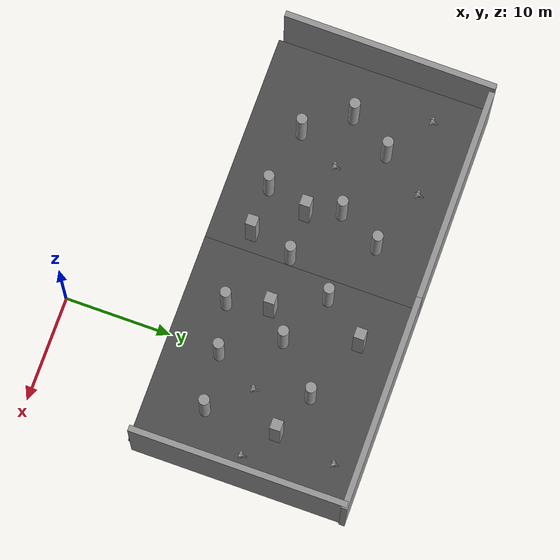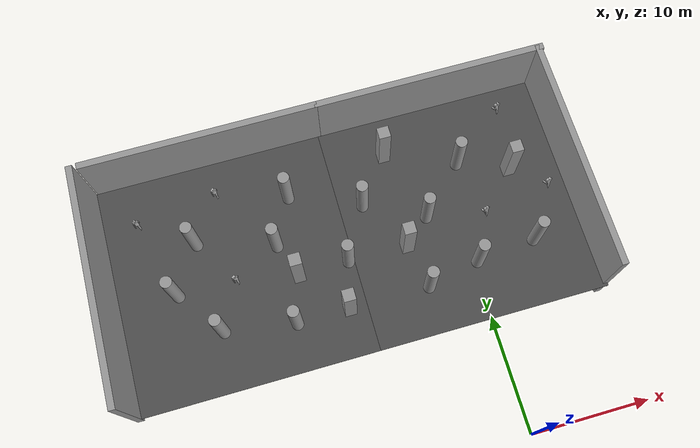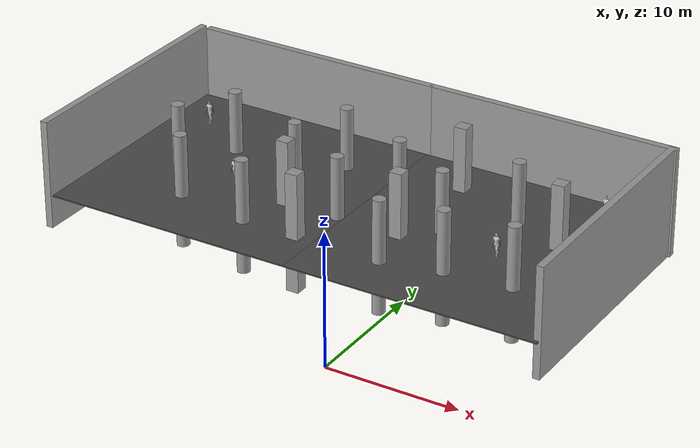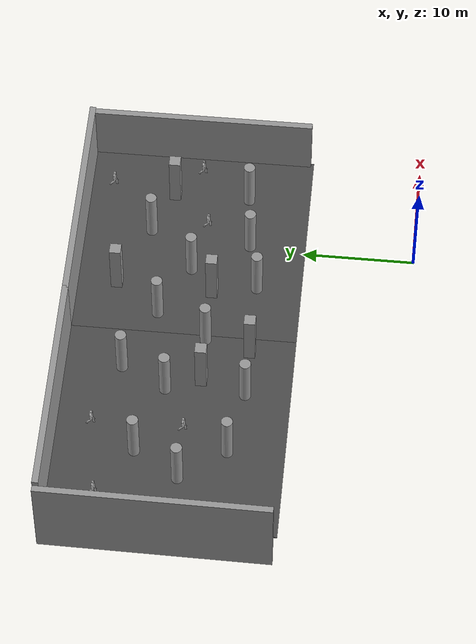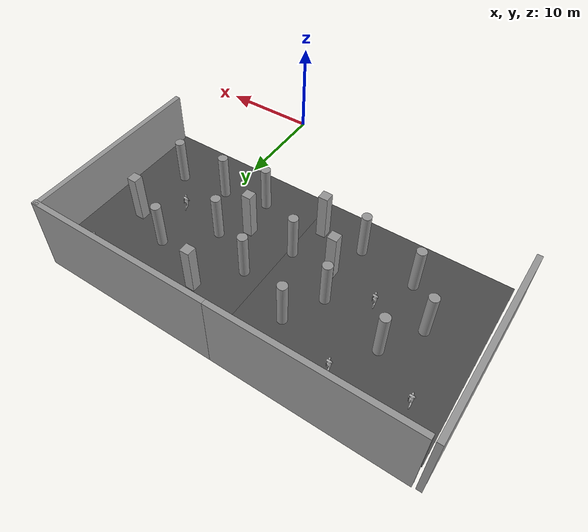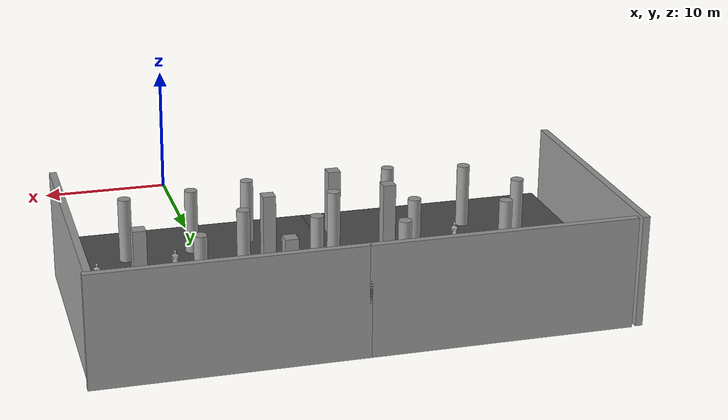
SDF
<sdf version="1.6">
 <model name="MW_world_1_0">
  <link name="link_0_0">
   <pose>-21.6457 14.7871 0.5 0 -0 0</pose>
   <inertial>
    <mass>9.05819</mass>
    <inertia><ixx>62.5018</ixx><ixy>0</ixy><ixz>0</ixz><iyy>62.5018</iyy><iyz>0</iyz><izz>1.13227</izz></inertia>
   </inertial>
   <visual name="visual">
    <geometry><cylinder><radius>0.5</radius><length>9.05819</length></cylinder></geometry>
    <material>
     <lighting>1</lighting>
     <script><uri>file://media/materials/scripts/gazebo.material</uri><name>Gazebo/Grey</name></script>
     <ambient>0.3 0.3 0.3 1</ambient>
     <diffuse>0.7 0.7 0.7 1</diffuse>
     <specular>0.01 0.01 0.01 1</specular>
     <emissive>0 0 0 1</emissive>
    </material>
   </visual>
   <collision name="collision">
    <geometry><cylinder><radius>0.5</radius><length>9.05819</length></cylinder></geometry>
    <surface>
     <friction>
      <ode><mu>1</mu><mu2>1</mu2><fdir1>0 0 0</fdir1><slip1>0</slip1><slip2>0</slip2></ode>
      <torsional>
       <coefficient>1</coefficient>
       <patch_radius>0</patch_radius>
       <surface_radius>0</surface_radius>
       <use_patch_radius>1</use_patch_radius>
       <ode><slip>0</slip></ode>
      </torsional>
     </friction>
     <bounce><restitution_coefficient>0</restitution_coefficient><threshold>1e+06</threshold></bounce>
     <contact>
      <collide_without_contact>0</collide_without_contact>
      <collide_without_contact_bitmask>1</collide_without_contact_bitmask>
      <collide_bitmask>1</collide_bitmask>
      <ode>
       <soft_cfm>0</soft_cfm>
       <soft_erp>0.2</soft_erp>
       <kp>1e+13</kp>
       <kd>1</kd>
       <max_vel>0.01</max_vel>
       <min_depth>0</min_depth>
      </ode>
      <bullet>
       <split_impulse>1</split_impulse>
       <split_impulse_penetration_threshold>-0.01</split_impulse_penetration_threshold>
       <soft_cfm>0</soft_cfm>
       <soft_erp>0.2</soft_erp>
       <kp>1e+13</kp>
       <kd>1</kd>
      </bullet>
     </contact>
    </surface>
   </collision>
  </link>
  <link name="link_0_0_clone">
   <pose>-13.6457 24.7871 0.5 0 -0 0</pose>
   <inertial>
    <mass>9.05819</mass>
    <inertia><ixx>62.5018</ixx><ixy>0</ixy><ixz>0</ixz><iyy>62.5018</iyy><iyz>0</iyz><izz>1.13227</izz></inertia>
   </inertial>
   <visual name="visual_0">
    <geometry><cylinder><radius>0.5</radius><length>9.05819</length></cylinder></geometry>
    <material>
     <lighting>1</lighting>
     <script><uri>file://media/materials/scripts/gazebo.material</uri><name>Gazebo/Grey</name></script>
     <ambient>0.3 0.3 0.3 1</ambient>
     <diffuse>0.7 0.7 0.7 1</diffuse>
     <specular>0.01 0.01 0.01 1</specular>
     <emissive>0 0 0 1</emissive>
     <shader type="pixel"/>
    </material>
   </visual>
   <collision name="collision">
    <geometry><cylinder><radius>0.5</radius><length>9.05819</length></cylinder></geometry>
    <surface>
     <friction>
      <ode><mu>1</mu><mu2>1</mu2><fdir1>0 0 0</fdir1><slip1>0</slip1><slip2>0</slip2></ode>
      <torsional>
       <coefficient>1</coefficient>
       <patch_radius>0</patch_radius>
       <surface_radius>0</surface_radius>
       <use_patch_radius>1</use_patch_radius>
       <ode><slip>0</slip></ode>
      </torsional>
     </friction>
     <bounce><restitution_coefficient>0</restitution_coefficient><threshold>1e+06</threshold></bounce>
     <contact>
      <collide_without_contact>0</collide_without_contact>
      <collide_without_contact_bitmask>1</collide_without_contact_bitmask>
      <collide_bitmask>1</collide_bitmask>
      <ode>
       <soft_cfm>0</soft_cfm>
       <soft_erp>0.2</soft_erp>
       <kp>1e+13</kp>
       <kd>1</kd>
       <max_vel>0.01</max_vel>
       <min_depth>0</min_depth>
      </ode>
      <bullet>
       <split_impulse>1</split_impulse>
       <split_impulse_penetration_threshold>-0.01</split_impulse_penetration_threshold>
       <soft_cfm>0</soft_cfm>
       <soft_erp>0.2</soft_erp>
       <kp>1e+13</kp>
       <kd>1</kd>
      </bullet>
     </contact>
    </surface>
   </collision>
  </link>
  <link name="link_0_0_clone_0">
   <pose>0.35425 14.7871 0.5 0 -0 0</pose>
   <inertial>
    <mass>9.05819</mass>
    <inertia><ixx>62.5018</ixx><ixy>0</ixy><ixz>0</ixz><iyy>62.5018</iyy><iyz>0</iyz><izz>1.13227</izz></inertia>
   </inertial>
   <visual name="visual_0">
    <geometry><cylinder><radius>0.5</radius><length>9.05819</length></cylinder></geometry>
    <material>
     <lighting>1</lighting>
     <script><uri>file://media/materials/scripts/gazebo.material</uri><name>Gazebo/Grey</name></script>
     <ambient>0.3 0.3 0.3 1</ambient>
     <diffuse>0.7 0.7 0.7 1</diffuse>
     <specular>0.01 0.01 0.01 1</specular>
     <emissive>0 0 0 1</emissive>
     <shader type="pixel"/>
    </material>
   </visual>
   <collision name="collision">
    <geometry><cylinder><radius>0.5</radius><length>9.05819</length></cylinder></geometry>
    <surface>
     <friction>
      <ode><mu>1</mu><mu2>1</mu2><fdir1>0 0 0</fdir1><slip1>0</slip1><slip2>0</slip2></ode>
      <torsional>
       <coefficient>1</coefficient>
       <patch_radius>0</patch_radius>
       <surface_radius>0</surface_radius>
       <use_patch_radius>1</use_patch_radius>
       <ode><slip>0</slip></ode>
      </torsional>
     </friction>
     <bounce><restitution_coefficient>0</restitution_coefficient><threshold>1e+06</threshold></bounce>
     <contact>
      <collide_without_contact>0</collide_without_contact>
      <collide_without_contact_bitmask>1</collide_without_contact_bitmask>
      <collide_bitmask>1</collide_bitmask>
      <ode>
       <soft_cfm>0</soft_cfm>
       <soft_erp>0.2</soft_erp>
       <kp>1e+13</kp>
       <kd>1</kd>
       <max_vel>0.01</max_vel>
       <min_depth>0</min_depth>
      </ode>
      <bullet>
       <split_impulse>1</split_impulse>
       <split_impulse_penetration_threshold>-0.01</split_impulse_penetration_threshold>
       <soft_cfm>0</soft_cfm>
       <soft_erp>0.2</soft_erp>
       <kp>1e+13</kp>
       <kd>1</kd>
      </bullet>
     </contact>
    </surface>
   </collision>
  </link>
  <link name="link_0_0_clone_1">
   <pose>1.35425 23.7871 0.5 0 -0 0</pose>
   <inertial>
    <mass>9.05819</mass>
    <inertia><ixx>62.5018</ixx><ixy>0</ixy><ixz>0</ixz><iyy>62.5018</iyy><iyz>0</iyz><izz>1.13227</izz></inertia>
   </inertial>
   <visual name="visual_0">
    <geometry><cylinder><radius>0.5</radius><length>9.05819</length></cylinder></geometry>
    <material>
     <lighting>1</lighting>
     <script><uri>file://media/materials/scripts/gazebo.material</uri><name>Gazebo/Grey</name></script>
     <ambient>0.3 0.3 0.3 1</ambient>
     <diffuse>0.7 0.7 0.7 1</diffuse>
     <specular>0.01 0.01 0.01 1</specular>
     <emissive>0 0 0 1</emissive>
     <shader type="pixel"/>
    </material>
   </visual>
   <collision name="collision">
    <geometry><cylinder><radius>0.5</radius><length>9.05819</length></cylinder></geometry>
    <surface>
     <friction>
      <ode><mu>1</mu><mu2>1</mu2><fdir1>0 0 0</fdir1><slip1>0</slip1><slip2>0</slip2></ode>
      <torsional>
       <coefficient>1</coefficient>
       <patch_radius>0</patch_radius>
       <surface_radius>0</surface_radius>
       <use_patch_radius>1</use_patch_radius>
       <ode><slip>0</slip></ode>
      </torsional>
     </friction>
     <bounce><restitution_coefficient>0</restitution_coefficient><threshold>1e+06</threshold></bounce>
     <contact>
      <collide_without_contact>0</collide_without_contact>
      <collide_without_contact_bitmask>1</collide_without_contact_bitmask>
      <collide_bitmask>1</collide_bitmask>
      <ode>
       <soft_cfm>0</soft_cfm>
       <soft_erp>0.2</soft_erp>
       <kp>1e+13</kp>
       <kd>1</kd>
       <max_vel>0.01</max_vel>
       <min_depth>0</min_depth>
      </ode>
      <bullet>
       <split_impulse>1</split_impulse>
       <split_impulse_penetration_threshold>-0.01</split_impulse_penetration_threshold>
       <soft_cfm>0</soft_cfm>
       <soft_erp>0.2</soft_erp>
       <kp>1e+13</kp>
       <kd>1</kd>
      </bullet>
     </contact>
    </surface>
   </collision>
  </link>
  <link name="link_0_0_clone_10">
   <pose>5.5552 15.3295 0.5 0 -0 0</pose>
   <inertial>
    <mass>9.05819</mass>
    <inertia><ixx>62.5018</ixx><ixy>0</ixy><ixz>0</ixz><iyy>62.5018</iyy><iyz>0</iyz><izz>1.13227</izz></inertia>
   </inertial>
   <visual name="visual_0">
    <geometry><cylinder><radius>0.5</radius><length>9.05819</length></cylinder></geometry>
    <material>
     <lighting>1</lighting>
     <script><uri>file://media/materials/scripts/gazebo.material</uri><name>Gazebo/Grey</name></script>
     <ambient>0.3 0.3 0.3 1</ambient>
     <diffuse>0.7 0.7 0.7 1</diffuse>
     <specular>0.01 0.01 0.01 1</specular>
     <emissive>0 0 0 1</emissive>
     <shader type="pixel"/>
    </material>
   </visual>
   <collision name="collision">
    <geometry><cylinder><radius>0.5</radius><length>9.05819</length></cylinder></geometry>
    <surface>
     <friction>
      <ode><mu>1</mu><mu2>1</mu2><fdir1>0 0 0</fdir1><slip1>0</slip1><slip2>0</slip2></ode>
      <torsional>
       <coefficient>1</coefficient>
       <patch_radius>0</patch_radius>
       <surface_radius>0</surface_radius>
       <use_patch_radius>1</use_patch_radius>
       <ode><slip>0</slip></ode>
      </torsional>
     </friction>
     <bounce><restitution_coefficient>0</restitution_coefficient><threshold>1e+06</threshold></bounce>
     <contact>
      <collide_without_contact>0</collide_without_contact>
      <collide_without_contact_bitmask>1</collide_without_contact_bitmask>
      <collide_bitmask>1</collide_bitmask>
      <ode>
       <soft_cfm>0</soft_cfm>
       <soft_erp>0.2</soft_erp>
       <kp>1e+13</kp>
       <kd>1</kd>
       <max_vel>0.01</max_vel>
       <min_depth>0</min_depth>
      </ode>
      <bullet>
       <split_impulse>1</split_impulse>
       <split_impulse_penetration_threshold>-0.01</split_impulse_penetration_threshold>
       <soft_cfm>0</soft_cfm>
       <soft_erp>0.2</soft_erp>
       <kp>1e+13</kp>
       <kd>1</kd>
      </bullet>
     </contact>
    </surface>
   </collision>
  </link>
  <link name="link_0_0_clone_2">
   <pose>-10.147 17.7871 0.5 0 -0 0</pose>
   <inertial>
    <mass>9.05819</mass>
    <inertia><ixx>62.5018</ixx><ixy>0</ixy><ixz>0</ixz><iyy>62.5018</iyy><iyz>0</iyz><izz>1.13227</izz></inertia>
   </inertial>
   <visual name="visual_0">
    <geometry><cylinder><radius>0.5</radius><length>9.05819</length></cylinder></geometry>
    <material>
     <lighting>1</lighting>
     <script><uri>file://media/materials/scripts/gazebo.material</uri><name>Gazebo/Grey</name></script>
     <ambient>0.3 0.3 0.3 1</ambient>
     <diffuse>0.7 0.7 0.7 1</diffuse>
     <specular>0.01 0.01 0.01 1</specular>
     <emissive>0 0 0 1</emissive>
     <shader type="pixel"/>
    </material>
   </visual>
   <collision name="collision">
    <geometry><cylinder><radius>0.5</radius><length>9.05819</length></cylinder></geometry>
    <surface>
     <friction>
      <ode><mu>1</mu><mu2>1</mu2><fdir1>0 0 0</fdir1><slip1>0</slip1><slip2>0</slip2></ode>
      <torsional>
       <coefficient>1</coefficient>
       <patch_radius>0</patch_radius>
       <surface_radius>0</surface_radius>
       <use_patch_radius>1</use_patch_radius>
       <ode><slip>0</slip></ode>
      </torsional>
     </friction>
     <bounce><restitution_coefficient>0</restitution_coefficient><threshold>1e+06</threshold></bounce>
     <contact>
      <collide_without_contact>0</collide_without_contact>
      <collide_without_contact_bitmask>1</collide_without_contact_bitmask>
      <collide_bitmask>1</collide_bitmask>
      <ode>
       <soft_cfm>0</soft_cfm>
       <soft_erp>0.2</soft_erp>
       <kp>1e+13</kp>
       <kd>1</kd>
       <max_vel>0.01</max_vel>
       <min_depth>0</min_depth>
      </ode>
      <bullet>
       <split_impulse>1</split_impulse>
       <split_impulse_penetration_threshold>-0.01</split_impulse_penetration_threshold>
       <soft_cfm>0</soft_cfm>
       <soft_erp>0.2</soft_erp>
       <kp>1e+13</kp>
       <kd>1</kd>
      </bullet>
     </contact>
    </surface>
   </collision>
  </link>
  <link name="link_0_0_clone_3">
   <pose>-7.64575 22.3014 0.5 0 -0 0</pose>
   <inertial>
    <mass>9.05819</mass>
    <inertia><ixx>62.5018</ixx><ixy>0</ixy><ixz>0</ixz><iyy>62.5018</iyy><iyz>0</iyz><izz>1.13227</izz></inertia>
   </inertial>
   <visual name="visual_0">
    <geometry><cylinder><radius>0.5</radius><length>9.05819</length></cylinder></geometry>
    <material>
     <lighting>1</lighting>
     <script><uri>file://media/materials/scripts/gazebo.material</uri><name>Gazebo/Grey</name></script>
     <ambient>0.3 0.3 0.3 1</ambient>
     <diffuse>0.7 0.7 0.7 1</diffuse>
     <specular>0.01 0.01 0.01 1</specular>
     <emissive>0 0 0 1</emissive>
     <shader type="pixel"/>
    </material>
   </visual>
   <collision name="collision">
    <geometry><cylinder><radius>0.5</radius><length>9.05819</length></cylinder></geometry>
    <surface>
     <friction>
      <ode><mu>1</mu><mu2>1</mu2><fdir1>0 0 0</fdir1><slip1>0</slip1><slip2>0</slip2></ode>
      <torsional>
       <coefficient>1</coefficient>
       <patch_radius>0</patch_radius>
       <surface_radius>0</surface_radius>
       <use_patch_radius>1</use_patch_radius>
       <ode><slip>0</slip></ode>
      </torsional>
     </friction>
     <bounce><restitution_coefficient>0</restitution_coefficient><threshold>1e+06</threshold></bounce>
     <contact>
      <collide_without_contact>0</collide_without_contact>
      <collide_without_contact_bitmask>1</collide_without_contact_bitmask>
      <collide_bitmask>1</collide_bitmask>
      <ode>
       <soft_cfm>0</soft_cfm>
       <soft_erp>0.2</soft_erp>
       <kp>1e+13</kp>
       <kd>1</kd>
       <max_vel>0.01</max_vel>
       <min_depth>0</min_depth>
      </ode>
      <bullet>
       <split_impulse>1</split_impulse>
       <split_impulse_penetration_threshold>-0.01</split_impulse_penetration_threshold>
       <soft_cfm>0</soft_cfm>
       <soft_erp>0.2</soft_erp>
       <kp>1e+13</kp>
       <kd>1</kd>
      </bullet>
     </contact>
    </surface>
   </collision>
  </link>
  <link name="link_0_0_clone_4">
   <pose>-15.6457 20.7871 0.5 0 -0 0</pose>
   <inertial>
    <mass>9.05819</mass>
    <inertia><ixx>62.5018</ixx><ixy>0</ixy><ixz>0</ixz><iyy>62.5018</iyy><iyz>0</iyz><izz>1.13227</izz></inertia>
   </inertial>
   <visual name="visual_0">
    <geometry><cylinder><radius>0.5</radius><length>9.05819</length></cylinder></geometry>
    <material>
     <lighting>1</lighting>
     <script><uri>file://media/materials/scripts/gazebo.material</uri><name>Gazebo/Grey</name></script>
     <ambient>0.3 0.3 0.3 1</ambient>
     <diffuse>0.7 0.7 0.7 1</diffuse>
     <specular>0.01 0.01 0.01 1</specular>
     <emissive>0 0 0 1</emissive>
     <shader type="pixel"/>
    </material>
   </visual>
   <collision name="collision">
    <geometry><cylinder><radius>0.5</radius><length>9.05819</length></cylinder></geometry>
    <surface>
     <friction>
      <ode><mu>1</mu><mu2>1</mu2><fdir1>0 0 0</fdir1><slip1>0</slip1><slip2>0</slip2></ode>
      <torsional>
       <coefficient>1</coefficient>
       <patch_radius>0</patch_radius>
       <surface_radius>0</surface_radius>
       <use_patch_radius>1</use_patch_radius>
       <ode><slip>0</slip></ode>
      </torsional>
     </friction>
     <bounce><restitution_coefficient>0</restitution_coefficient><threshold>1e+06</threshold></bounce>
     <contact>
      <collide_without_contact>0</collide_without_contact>
      <collide_without_contact_bitmask>1</collide_without_contact_bitmask>
      <collide_bitmask>1</collide_bitmask>
      <ode>
       <soft_cfm>0</soft_cfm>
       <soft_erp>0.2</soft_erp>
       <kp>1e+13</kp>
       <kd>1</kd>
       <max_vel>0.01</max_vel>
       <min_depth>0</min_depth>
      </ode>
      <bullet>
       <split_impulse>1</split_impulse>
       <split_impulse_penetration_threshold>-0.01</split_impulse_penetration_threshold>
       <soft_cfm>0</soft_cfm>
       <soft_erp>0.2</soft_erp>
       <kp>1e+13</kp>
       <kd>1</kd>
      </bullet>
     </contact>
    </surface>
   </collision>
  </link>
  <link name="link_0_0_clone_5">
   <pose>-15.6457 13.7871 0.5 0 -0 0</pose>
   <inertial>
    <mass>9.05819</mass>
    <inertia><ixx>62.5018</ixx><ixy>0</ixy><ixz>0</ixz><iyy>62.5018</iyy><iyz>0</iyz><izz>1.13227</izz></inertia>
   </inertial>
   <visual name="visual_0">
    <geometry><cylinder><radius>0.5</radius><length>9.05819</length></cylinder></geometry>
    <material>
     <lighting>1</lighting>
     <script><uri>file://media/materials/scripts/gazebo.material</uri><name>Gazebo/Grey</name></script>
     <ambient>0.3 0.3 0.3 1</ambient>
     <diffuse>0.7 0.7 0.7 1</diffuse>
     <specular>0.01 0.01 0.01 1</specular>
     <emissive>0 0 0 1</emissive>
     <shader type="pixel"/>
    </material>
   </visual>
   <collision name="collision">
    <geometry><cylinder><radius>0.5</radius><length>9.05819</length></cylinder></geometry>
    <surface>
     <friction>
      <ode><mu>1</mu><mu2>1</mu2><fdir1>0 0 0</fdir1><slip1>0</slip1><slip2>0</slip2></ode>
      <torsional>
       <coefficient>1</coefficient>
       <patch_radius>0</patch_radius>
       <surface_radius>0</surface_radius>
       <use_patch_radius>1</use_patch_radius>
       <ode><slip>0</slip></ode>
      </torsional>
     </friction>
     <bounce><restitution_coefficient>0</restitution_coefficient><threshold>1e+06</threshold></bounce>
     <contact>
      <collide_without_contact>0</collide_without_contact>
      <collide_without_contact_bitmask>1</collide_without_contact_bitmask>
      <collide_bitmask>1</collide_bitmask>
      <ode>
       <soft_cfm>0</soft_cfm>
       <soft_erp>0.2</soft_erp>
       <kp>1e+13</kp>
       <kd>1</kd>
       <max_vel>0.01</max_vel>
       <min_depth>0</min_depth>
      </ode>
      <bullet>
       <split_impulse>1</split_impulse>
       <split_impulse_penetration_threshold>-0.01</split_impulse_penetration_threshold>
       <soft_cfm>0</soft_cfm>
       <soft_erp>0.2</soft_erp>
       <kp>1e+13</kp>
       <kd>1</kd>
      </bullet>
     </contact>
    </surface>
   </collision>
  </link>
  <link name="link_0_0_clone_6">
   <pose>-22.2188 22.7871 0.5 0 -0 0</pose>
   <inertial>
    <mass>9.05819</mass>
    <inertia><ixx>62.5018</ixx><ixy>0</ixy><ixz>0</ixz><iyy>62.5018</iyy><iyz>0</iyz><izz>1.13227</izz></inertia>
   </inertial>
   <visual name="visual_0">
    <geometry><cylinder><radius>0.5</radius><length>9.05819</length></cylinder></geometry>
    <material>
     <lighting>1</lighting>
     <script><uri>file://media/materials/scripts/gazebo.material</uri><name>Gazebo/Grey</name></script>
     <ambient>0.3 0.3 0.3 1</ambient>
     <diffuse>0.7 0.7 0.7 1</diffuse>
     <specular>0.01 0.01 0.01 1</specular>
     <emissive>0 0 0 1</emissive>
     <shader type="pixel"/>
    </material>
   </visual>
   <collision name="collision">
    <geometry><cylinder><radius>0.5</radius><length>9.05819</length></cylinder></geometry>
    <surface>
     <friction>
      <ode><mu>1</mu><mu2>1</mu2><fdir1>0 0 0</fdir1><slip1>0</slip1><slip2>0</slip2></ode>
      <torsional>
       <coefficient>1</coefficient>
       <patch_radius>0</patch_radius>
       <surface_radius>0</surface_radius>
       <use_patch_radius>1</use_patch_radius>
       <ode><slip>0</slip></ode>
      </torsional>
     </friction>
     <bounce><restitution_coefficient>0</restitution_coefficient><threshold>1e+06</threshold></bounce>
     <contact>
      <collide_without_contact>0</collide_without_contact>
      <collide_without_contact_bitmask>1</collide_without_contact_bitmask>
      <collide_bitmask>1</collide_bitmask>
      <ode>
       <soft_cfm>0</soft_cfm>
       <soft_erp>0.2</soft_erp>
       <kp>1e+13</kp>
       <kd>1</kd>
       <max_vel>0.01</max_vel>
       <min_depth>0</min_depth>
      </ode>
      <bullet>
       <split_impulse>1</split_impulse>
       <split_impulse_penetration_threshold>-0.01</split_impulse_penetration_threshold>
       <soft_cfm>0</soft_cfm>
       <soft_erp>0.2</soft_erp>
       <kp>1e+13</kp>
       <kd>1</kd>
      </bullet>
     </contact>
    </surface>
   </collision>
  </link>
  <link name="link_0_0_clone_7">
   <pose>-24.6457 18.7871 0.5 0 -0 0</pose>
   <inertial>
    <mass>9.05819</mass>
    <inertia><ixx>62.5018</ixx><ixy>0</ixy><ixz>0</ixz><iyy>62.5018</iyy><iyz>0</iyz><izz>1.13227</izz></inertia>
   </inertial>
   <visual name="visual_0">
    <geometry><cylinder><radius>0.5</radius><length>9.05819</length></cylinder></geometry>
    <material>
     <lighting>1</lighting>
     <script><uri>file://media/materials/scripts/gazebo.material</uri><name>Gazebo/Grey</name></script>
     <ambient>0.3 0.3 0.3 1</ambient>
     <diffuse>0.7 0.7 0.7 1</diffuse>
     <specular>0.01 0.01 0.01 1</specular>
     <emissive>0 0 0 1</emissive>
     <shader type="pixel"/>
    </material>
   </visual>
   <collision name="collision">
    <geometry><cylinder><radius>0.5</radius><length>9.05819</length></cylinder></geometry>
    <surface>
     <friction>
      <ode><mu>1</mu><mu2>1</mu2><fdir1>0 0 0</fdir1><slip1>0</slip1><slip2>0</slip2></ode>
      <torsional>
       <coefficient>1</coefficient>
       <patch_radius>0</patch_radius>
       <surface_radius>0</surface_radius>
       <use_patch_radius>1</use_patch_radius>
       <ode><slip>0</slip></ode>
      </torsional>
     </friction>
     <bounce><restitution_coefficient>0</restitution_coefficient><threshold>1e+06</threshold></bounce>
     <contact>
      <collide_without_contact>0</collide_without_contact>
      <collide_without_contact_bitmask>1</collide_without_contact_bitmask>
      <collide_bitmask>1</collide_bitmask>
      <ode>
       <soft_cfm>0</soft_cfm>
       <soft_erp>0.2</soft_erp>
       <kp>1e+13</kp>
       <kd>1</kd>
       <max_vel>0.01</max_vel>
       <min_depth>0</min_depth>
      </ode>
      <bullet>
       <split_impulse>1</split_impulse>
       <split_impulse_penetration_threshold>-0.01</split_impulse_penetration_threshold>
       <soft_cfm>0</soft_cfm>
       <soft_erp>0.2</soft_erp>
       <kp>1e+13</kp>
       <kd>1</kd>
      </bullet>
     </contact>
    </surface>
   </collision>
  </link>
  <link name="link_0_0_clone_8">
   <pose>-4.23431 13.7871 0.5 0 -0 0</pose>
   <inertial>
    <mass>9.05819</mass>
    <inertia><ixx>62.5018</ixx><ixy>0</ixy><ixz>0</ixz><iyy>62.5018</iyy><iyz>0</iyz><izz>1.13227</izz></inertia>
   </inertial>
   <visual name="visual_0">
    <geometry><cylinder><radius>0.5</radius><length>9.05819</length></cylinder></geometry>
    <material>
     <lighting>1</lighting>
     <script><uri>file://media/materials/scripts/gazebo.material</uri><name>Gazebo/Grey</name></script>
     <ambient>0.3 0.3 0.3 1</ambient>
     <diffuse>0.7 0.7 0.7 1</diffuse>
     <specular>0.01 0.01 0.01 1</specular>
     <emissive>0 0 0 1</emissive>
     <shader type="pixel"/>
    </material>
   </visual>
   <collision name="collision">
    <geometry><cylinder><radius>0.5</radius><length>9.05819</length></cylinder></geometry>
    <surface>
     <friction>
      <ode><mu>1</mu><mu2>1</mu2><fdir1>0 0 0</fdir1><slip1>0</slip1><slip2>0</slip2></ode>
      <torsional>
       <coefficient>1</coefficient>
       <patch_radius>0</patch_radius>
       <surface_radius>0</surface_radius>
       <use_patch_radius>1</use_patch_radius>
       <ode><slip>0</slip></ode>
      </torsional>
     </friction>
     <bounce><restitution_coefficient>0</restitution_coefficient><threshold>1e+06</threshold></bounce>
     <contact>
      <collide_without_contact>0</collide_without_contact>
      <collide_without_contact_bitmask>1</collide_without_contact_bitmask>
      <collide_bitmask>1</collide_bitmask>
      <ode>
       <soft_cfm>0</soft_cfm>
       <soft_erp>0.2</soft_erp>
       <kp>1e+13</kp>
       <kd>1</kd>
       <max_vel>0.01</max_vel>
       <min_depth>0</min_depth>
      </ode>
      <bullet>
       <split_impulse>1</split_impulse>
       <split_impulse_penetration_threshold>-0.01</split_impulse_penetration_threshold>
       <soft_cfm>0</soft_cfm>
       <soft_erp>0.2</soft_erp>
       <kp>1e+13</kp>
       <kd>1</kd>
      </bullet>
     </contact>
    </surface>
   </collision>
  </link>
  <link name="link_0_0_clone_9">
   <pose>-2.64575 19.7871 0.5 0 -0 0</pose>
   <inertial>
    <mass>9.05819</mass>
    <inertia><ixx>62.5018</ixx><ixy>0</ixy><ixz>0</ixz><iyy>62.5018</iyy><iyz>0</iyz><izz>1.13227</izz></inertia>
   </inertial>
   <visual name="visual_0">
    <geometry><cylinder><radius>0.5</radius><length>9.05819</length></cylinder></geometry>
    <material>
     <lighting>1</lighting>
     <script><uri>file://media/materials/scripts/gazebo.material</uri><name>Gazebo/Grey</name></script>
     <ambient>0.3 0.3 0.3 1</ambient>
     <diffuse>0.7 0.7 0.7 1</diffuse>
     <specular>0.01 0.01 0.01 1</specular>
     <emissive>0 0 0 1</emissive>
     <shader type="pixel"/>
    </material>
   </visual>
   <collision name="collision">
    <geometry><cylinder><radius>0.5</radius><length>9.05819</length></cylinder></geometry>
    <surface>
     <friction>
      <ode><mu>1</mu><mu2>1</mu2><fdir1>0 0 0</fdir1><slip1>0</slip1><slip2>0</slip2></ode>
      <torsional>
       <coefficient>1</coefficient>
       <patch_radius>0</patch_radius>
       <surface_radius>0</surface_radius>
       <use_patch_radius>1</use_patch_radius>
       <ode><slip>0</slip></ode>
      </torsional>
     </friction>
     <bounce><restitution_coefficient>0</restitution_coefficient><threshold>1e+06</threshold></bounce>
     <contact>
      <collide_without_contact>0</collide_without_contact>
      <collide_without_contact_bitmask>1</collide_without_contact_bitmask>
      <collide_bitmask>1</collide_bitmask>
      <ode>
       <soft_cfm>0</soft_cfm>
       <soft_erp>0.2</soft_erp>
       <kp>1e+13</kp>
       <kd>1</kd>
       <max_vel>0.01</max_vel>
       <min_depth>0</min_depth>
      </ode>
      <bullet>
       <split_impulse>1</split_impulse>
       <split_impulse_penetration_threshold>-0.01</split_impulse_penetration_threshold>
       <soft_cfm>0</soft_cfm>
       <soft_erp>0.2</soft_erp>
       <kp>1e+13</kp>
       <kd>1</kd>
      </bullet>
     </contact>
    </surface>
   </collision>
  </link>
  <link name="link_0_clone_clone_clone">
   <pose>5.54263 22.0768 0.5 0 -0 0</pose>
   <inertial>
    <mass>9.47467</mass>
    <inertia><ixx>71.6676</ixx><ixy>0</ixy><ixz>0</ixz><iyy>71.6676</iyy><iyz>0</iyz><izz>1.57911</izz></inertia>
   </inertial>
   <visual name="visual">
    <geometry><box><size>1 1 9.47467</size></box></geometry>
    <material>
     <lighting>1</lighting>
     <script><uri>file://media/materials/scripts/gazebo.material</uri><name>Gazebo/Grey</name></script>
     <ambient>0.3 0.3 0.3 1</ambient>
     <diffuse>0.7 0.7 0.7 1</diffuse>
     <specular>0.01 0.01 0.01 1</specular>
     <emissive>0 0 0 1</emissive>
     <shader type="pixel"/>
    </material>
   </visual>
   <collision name="collision">
    <geometry><box><size>1 1 9.47467</size></box></geometry>
    <surface>
     <friction>
      <ode><mu>1</mu><mu2>1</mu2><fdir1>0 0 0</fdir1><slip1>0</slip1><slip2>0</slip2></ode>
      <torsional>
       <coefficient>1</coefficient>
       <patch_radius>0</patch_radius>
       <surface_radius>0</surface_radius>
       <use_patch_radius>1</use_patch_radius>
       <ode><slip>0</slip></ode>
      </torsional>
     </friction>
     <bounce><restitution_coefficient>0</restitution_coefficient><threshold>1e+06</threshold></bounce>
     <contact>
      <collide_without_contact>0</collide_without_contact>
      <collide_without_contact_bitmask>1</collide_without_contact_bitmask>
      <collide_bitmask>1</collide_bitmask>
      <ode>
       <soft_cfm>0</soft_cfm>
       <soft_erp>0.2</soft_erp>
       <kp>1e+13</kp>
       <kd>1</kd>
       <max_vel>0.01</max_vel>
       <min_depth>0</min_depth>
      </ode>
      <bullet>
       <split_impulse>1</split_impulse>
       <split_impulse_penetration_threshold>-0.01</split_impulse_penetration_threshold>
       <soft_cfm>0</soft_cfm>
       <soft_erp>0.2</soft_erp>
       <kp>1e+13</kp>
       <kd>1</kd>
      </bullet>
     </contact>
    </surface>
   </collision>
  </link>
  <link name="link_0_clone_clone_clone_0">
   <pose>-4.64575 26.2845 0.5 0 -0 0</pose>
   <inertial>
    <mass>9.47467</mass>
    <inertia><ixx>71.6676</ixx><ixy>0</ixy><ixz>0</ixz><iyy>71.6676</iyy><iyz>0</iyz><izz>1.57911</izz></inertia>
   </inertial>
   <visual name="visual">
    <geometry><box><size>1 1 9.47467</size></box></geometry>
    <material>
     <lighting>1</lighting>
     <script><uri>file://media/materials/scripts/gazebo.material</uri><name>Gazebo/Grey</name></script>
     <ambient>0.3 0.3 0.3 1</ambient>
     <diffuse>0.7 0.7 0.7 1</diffuse>
     <specular>0.01 0.01 0.01 1</specular>
     <emissive>0 0 0 1</emissive>
     <shader type="pixel"/>
    </material>
   </visual>
   <collision name="collision">
    <geometry><box><size>1 1 9.47467</size></box></geometry>
    <surface>
     <friction>
      <ode><mu>1</mu><mu2>1</mu2><fdir1>0 0 0</fdir1><slip1>0</slip1><slip2>0</slip2></ode>
      <torsional>
       <coefficient>1</coefficient>
       <patch_radius>0</patch_radius>
       <surface_radius>0</surface_radius>
       <use_patch_radius>1</use_patch_radius>
       <ode><slip>0</slip></ode>
      </torsional>
     </friction>
     <bounce><restitution_coefficient>0</restitution_coefficient><threshold>1e+06</threshold></bounce>
     <contact>
      <collide_without_contact>0</collide_without_contact>
      <collide_without_contact_bitmask>1</collide_without_contact_bitmask>
      <collide_bitmask>1</collide_bitmask>
      <ode>
       <soft_cfm>0</soft_cfm>
       <soft_erp>0.2</soft_erp>
       <kp>1e+13</kp>
       <kd>1</kd>
       <max_vel>0.01</max_vel>
       <min_depth>0</min_depth>
      </ode>
      <bullet>
       <split_impulse>1</split_impulse>
       <split_impulse_penetration_threshold>-0.01</split_impulse_penetration_threshold>
       <soft_cfm>0</soft_cfm>
       <soft_erp>0.2</soft_erp>
       <kp>1e+13</kp>
       <kd>1</kd>
      </bullet>
     </contact>
    </surface>
   </collision>
  </link>
  <link name="link_0_clone_clone_clone_1">
   <pose>-11.1672 13.7871 0.5 0 -0 0</pose>
   <inertial>
    <mass>9.47467</mass>
    <inertia><ixx>71.6676</ixx><ixy>0</ixy><ixz>0</ixz><iyy>71.6676</iyy><iyz>0</iyz><izz>1.57911</izz></inertia>
   </inertial>
   <visual name="visual">
    <geometry><box><size>1 1 9.47467</size></box></geometry>
    <material>
     <lighting>1</lighting>
     <script><uri>file://media/materials/scripts/gazebo.material</uri><name>Gazebo/Grey</name></script>
     <ambient>0.3 0.3 0.3 1</ambient>
     <diffuse>0.7 0.7 0.7 1</diffuse>
     <specular>0.01 0.01 0.01 1</specular>
     <emissive>0 0 0 1</emissive>
     <shader type="pixel"/>
    </material>
   </visual>
   <collision name="collision">
    <geometry><box><size>1 1 9.47467</size></box></geometry>
    <surface>
     <friction>
      <ode><mu>1</mu><mu2>1</mu2><fdir1>0 0 0</fdir1><slip1>0</slip1><slip2>0</slip2></ode>
      <torsional>
       <coefficient>1</coefficient>
       <patch_radius>0</patch_radius>
       <surface_radius>0</surface_radius>
       <use_patch_radius>1</use_patch_radius>
       <ode><slip>0</slip></ode>
      </torsional>
     </friction>
     <bounce><restitution_coefficient>0</restitution_coefficient><threshold>1e+06</threshold></bounce>
     <contact>
      <collide_without_contact>0</collide_without_contact>
      <collide_without_contact_bitmask>1</collide_without_contact_bitmask>
      <collide_bitmask>1</collide_bitmask>
      <ode>
       <soft_cfm>0</soft_cfm>
       <soft_erp>0.2</soft_erp>
       <kp>1e+13</kp>
       <kd>1</kd>
       <max_vel>0.01</max_vel>
       <min_depth>0</min_depth>
      </ode>
      <bullet>
       <split_impulse>1</split_impulse>
       <split_impulse_penetration_threshold>-0.01</split_impulse_penetration_threshold>
       <soft_cfm>0</soft_cfm>
       <soft_erp>0.2</soft_erp>
       <kp>1e+13</kp>
       <kd>1</kd>
      </bullet>
     </contact>
    </surface>
   </collision>
  </link>
  <link name="link_0_clone_clone_clone_1_clone">
   <pose>-14.4872 17.7321 0.5 0 -0 0</pose>
   <inertial>
    <mass>9.47467</mass>
    <inertia><ixx>71.6676</ixx><ixy>0</ixy><ixz>0</ixz><iyy>71.6676</iyy><iyz>0</iyz><izz>1.57911</izz></inertia>
   </inertial>
   <visual name="visual">
    <geometry><box><size>1 1 9.47467</size></box></geometry>
    <material>
     <lighting>1</lighting>
     <script><uri>file://media/materials/scripts/gazebo.material</uri><name>Gazebo/Grey</name></script>
     <ambient>0.3 0.3 0.3 1</ambient>
     <diffuse>0.7 0.7 0.7 1</diffuse>
     <specular>0.01 0.01 0.01 1</specular>
     <emissive>0 0 0 1</emissive>
     <shader type="pixel"/>
    </material>
   </visual>
   <collision name="collision">
    <geometry><box><size>1 1 9.47467</size></box></geometry>
    <surface>
     <friction>
      <ode><mu>1</mu><mu2>1</mu2><fdir1>0 0 0</fdir1><slip1>0</slip1><slip2>0</slip2></ode>
      <torsional>
       <coefficient>1</coefficient>
       <patch_radius>0</patch_radius>
       <surface_radius>0</surface_radius>
       <use_patch_radius>1</use_patch_radius>
       <ode><slip>0</slip></ode>
      </torsional>
     </friction>
     <bounce><restitution_coefficient>0</restitution_coefficient><threshold>1e+06</threshold></bounce>
     <contact>
      <collide_without_contact>0</collide_without_contact>
      <collide_without_contact_bitmask>1</collide_without_contact_bitmask>
      <collide_bitmask>1</collide_bitmask>
      <ode>
       <soft_cfm>0</soft_cfm>
       <soft_erp>0.2</soft_erp>
       <kp>1e+13</kp>
       <kd>1</kd>
       <max_vel>0.01</max_vel>
       <min_depth>0</min_depth>
      </ode>
      <bullet>
       <split_impulse>1</split_impulse>
       <split_impulse_penetration_threshold>-0.01</split_impulse_penetration_threshold>
       <soft_cfm>0</soft_cfm>
       <soft_erp>0.2</soft_erp>
       <kp>1e+13</kp>
       <kd>1</kd>
      </bullet>
     </contact>
    </surface>
   </collision>
  </link>
  <link name="link_0_clone_clone_clone_1_clone_0">
   <pose>-5.01813 17.7321 0.5 0 -0 0</pose>
   <inertial>
    <mass>9.47467</mass>
    <inertia><ixx>71.6676</ixx><ixy>0</ixy><ixz>0</ixz><iyy>71.6676</iyy><iyz>0</iyz><izz>1.57911</izz></inertia>
   </inertial>
   <visual name="visual">
    <geometry><box><size>1 1 9.47467</size></box></geometry>
    <material>
     <lighting>1</lighting>
     <script><uri>file://media/materials/scripts/gazebo.material</uri><name>Gazebo/Grey</name></script>
     <ambient>0.3 0.3 0.3 1</ambient>
     <diffuse>0.7 0.7 0.7 1</diffuse>
     <specular>0.01 0.01 0.01 1</specular>
     <emissive>0 0 0 1</emissive>
     <shader type="pixel"/>
    </material>
   </visual>
   <collision name="collision">
    <geometry><box><size>1 1 9.47467</size></box></geometry>
    <surface>
     <friction>
      <ode><mu>1</mu><mu2>1</mu2><fdir1>0 0 0</fdir1><slip1>0</slip1><slip2>0</slip2></ode>
      <torsional>
       <coefficient>1</coefficient>
       <patch_radius>0</patch_radius>
       <surface_radius>0</surface_radius>
       <use_patch_radius>1</use_patch_radius>
       <ode><slip>0</slip></ode>
      </torsional>
     </friction>
     <bounce><restitution_coefficient>0</restitution_coefficient><threshold>1e+06</threshold></bounce>
     <contact>
      <collide_without_contact>0</collide_without_contact>
      <collide_without_contact_bitmask>1</collide_without_contact_bitmask>
      <collide_bitmask>1</collide_bitmask>
      <ode>
       <soft_cfm>0</soft_cfm>
       <soft_erp>0.2</soft_erp>
       <kp>1e+13</kp>
       <kd>1</kd>
       <max_vel>0.01</max_vel>
       <min_depth>0</min_depth>
      </ode>
      <bullet>
       <split_impulse>1</split_impulse>
       <split_impulse_penetration_threshold>-0.01</split_impulse_penetration_threshold>
       <soft_cfm>0</soft_cfm>
       <soft_erp>0.2</soft_erp>
       <kp>1e+13</kp>
       <kd>1</kd>
      </bullet>
     </contact>
    </surface>
   </collision>
  </link>
  <model name="asphalt_plane_clone_0">
   <static>1</static>
   <link name="link">
    <collision name="collision"><geometry><box><size>20 20 0.1</size></box></geometry></collision>
    <visual name="visual">
     <cast_shadows>0</cast_shadows>
     <geometry><box><size>20 20 0.1</size></box></geometry>
     <material>
      <script>
       <uri>model://asphalt_plane/materials/scripts</uri>
       <uri>model://asphalt_plane/materials/textures</uri>
       <name>vrc/asphalt</name>
      </script>
     </material>
    </visual>
   </link>
   <pose>0.35425 19.7871 0 0 -0 0</pose>
  </model>
  <model name="asphalt_plane_clone_0_clone">
   <static>1</static>
   <link name="link">
    <collision name="collision"><geometry><box><size>20 20 0.1</size></box></geometry></collision>
    <visual name="visual">
     <cast_shadows>0</cast_shadows>
     <geometry><box><size>20 20 0.1</size></box></geometry>
     <material>
      <script>
       <uri>model://asphalt_plane/materials/scripts</uri>
       <uri>model://asphalt_plane/materials/textures</uri>
       <name>vrc/asphalt</name>
      </script>
     </material>
    </visual>
   </link>
   <pose>-19.6457 19.7871 0 0 -0 0</pose>
  </model>
  <model name="grey_wall_mw_clone_0_clone">
   <link name="link">
    <pose>-8.81665 -2.69351 1.4 0 -0 0</pose>
    <inertial>
     <inertia><ixx>nan</ixx><ixy>0</ixy><ixz>0</ixz><iyy>nan</iyy><iyz>0</iyz><izz>nan</izz></inertia>
     <mass>0</mass>
    </inertial>
    <visual name="visual">
     <cast_shadows>0</cast_shadows>
     <geometry><box><size>20.2056 0.556506 8.63552</size></box></geometry>
     <material>
      <script>
       <uri>model://grey_wall/materials/scripts</uri>
       <uri>model://grey_wall/materials/textures</uri>
       <name>vrc/grey_wall</name>
      </script>
      <ambient>1 1 1 1</ambient>
      <diffuse>1 1 1 1</diffuse>
      <specular>0 0 0 1</specular>
      <emissive>0 0 0 1</emissive>
     </material>
    </visual>
    <collision name="collision">
     <geometry><box><size>20.2056 0.556506 8.63552</size></box></geometry>
     <surface>
      <friction>
       <ode><mu>1</mu><mu2>1</mu2><fdir1>0 0 0</fdir1><slip1>0</slip1><slip2>0</slip2></ode>
       <torsional>
        <coefficient>1</coefficient>
        <patch_radius>0</patch_radius>
        <surface_radius>0</surface_radius>
        <use_patch_radius>1</use_patch_radius>
        <ode><slip>0</slip></ode>
       </torsional>
      </friction>
      <bounce><restitution_coefficient>0</restitution_coefficient><threshold>1e+06</threshold></bounce>
      <contact>
       <collide_without_contact>0</collide_without_contact>
       <collide_without_contact_bitmask>1</collide_without_contact_bitmask>
       <collide_bitmask>1</collide_bitmask>
       <ode>
        <soft_cfm>0</soft_cfm>
        <soft_erp>0.2</soft_erp>
        <kp>1e+13</kp>
        <kd>1</kd>
        <max_vel>0.01</max_vel>
        <min_depth>0</min_depth>
       </ode>
       <bullet>
        <split_impulse>1</split_impulse>
        <split_impulse_penetration_threshold>-0.01</split_impulse_penetration_threshold>
        <soft_cfm>0</soft_cfm>
        <soft_erp>0.2</soft_erp>
        <kp>1e+13</kp>
        <kd>1</kd>
       </bullet>
      </contact>
     </surface>
    </collision>
   </link>
   <static>1</static>
   <pose>12.9434 11.3466 0 0 0 -1.56891</pose>
  </model>
  <model name="grey_wall_mw_clone_2_clone_clone_0">
   <link name="link">
    <pose>-8.81665 -2.69351 1.4 0 -0 0</pose>
    <inertial>
     <inertia><ixx>nan</ixx><ixy>0</ixy><ixz>0</ixz><iyy>nan</iyy><iyz>0</iyz><izz>nan</izz></inertia>
     <mass>0</mass>
    </inertial>
    <visual name="visual">
     <cast_shadows>0</cast_shadows>
     <geometry><box><size>20.2056 0.556506 8.63552</size></box></geometry>
     <material>
      <script>
       <uri>model://grey_wall/materials/scripts</uri>
       <uri>model://grey_wall/materials/textures</uri>
       <name>vrc/grey_wall</name>
      </script>
      <ambient>1 1 1 1</ambient>
      <diffuse>1 1 1 1</diffuse>
      <specular>0 0 0 1</specular>
      <emissive>0 0 0 1</emissive>
     </material>
    </visual>
    <collision name="collision">
     <geometry><box><size>20.2056 0.556506 8.63552</size></box></geometry>
     <surface>
      <friction>
       <ode><mu>1</mu><mu2>1</mu2><fdir1>0 0 0</fdir1><slip1>0</slip1><slip2>0</slip2></ode>
       <torsional>
        <coefficient>1</coefficient>
        <patch_radius>0</patch_radius>
        <surface_radius>0</surface_radius>
        <use_patch_radius>1</use_patch_radius>
        <ode><slip>0</slip></ode>
       </torsional>
      </friction>
      <bounce><restitution_coefficient>0</restitution_coefficient><threshold>1e+06</threshold></bounce>
      <contact>
       <collide_without_contact>0</collide_without_contact>
       <collide_without_contact_bitmask>1</collide_without_contact_bitmask>
       <collide_bitmask>1</collide_bitmask>
       <ode>
        <soft_cfm>0</soft_cfm>
        <soft_erp>0.2</soft_erp>
        <kp>1e+13</kp>
        <kd>1</kd>
        <max_vel>0.01</max_vel>
        <min_depth>0</min_depth>
       </ode>
       <bullet>
        <split_impulse>1</split_impulse>
        <split_impulse_penetration_threshold>-0.01</split_impulse_penetration_threshold>
        <soft_cfm>0</soft_cfm>
        <soft_erp>0.2</soft_erp>
        <kp>1e+13</kp>
        <kd>1</kd>
       </bullet>
      </contact>
     </surface>
    </collision>
   </link>
   <static>1</static>
   <pose>9.35425 32.7871 0 0 -0 0</pose>
  </model>
  <model name="grey_wall_mw_clone_2_clone_clone_0_clone">
   <link name="link">
    <pose>-8.81665 -2.69351 1.4 0 -0 0</pose>
    <inertial>
     <inertia><ixx>nan</ixx><ixy>0</ixy><ixz>0</ixz><iyy>nan</iyy><iyz>0</iyz><izz>nan</izz></inertia>
     <mass>0</mass>
    </inertial>
    <visual name="visual">
     <cast_shadows>0</cast_shadows>
     <geometry><box><size>20.2056 0.556506 8.63552</size></box></geometry>
     <material>
      <script>
       <uri>model://grey_wall/materials/scripts</uri>
       <uri>model://grey_wall/materials/textures</uri>
       <name>vrc/grey_wall</name>
      </script>
      <ambient>1 1 1 1</ambient>
      <diffuse>1 1 1 1</diffuse>
      <specular>0 0 0 1</specular>
      <emissive>0 0 0 1</emissive>
     </material>
    </visual>
    <collision name="collision">
     <geometry><box><size>20.2056 0.556506 8.63552</size></box></geometry>
     <surface>
      <friction>
       <ode><mu>1</mu><mu2>1</mu2><fdir1>0 0 0</fdir1><slip1>0</slip1><slip2>0</slip2></ode>
       <torsional>
        <coefficient>1</coefficient>
        <patch_radius>0</patch_radius>
        <surface_radius>0</surface_radius>
        <use_patch_radius>1</use_patch_radius>
        <ode><slip>0</slip></ode>
       </torsional>
      </friction>
      <bounce><restitution_coefficient>0</restitution_coefficient><threshold>1e+06</threshold></bounce>
      <contact>
       <collide_without_contact>0</collide_without_contact>
       <collide_without_contact_bitmask>1</collide_without_contact_bitmask>
       <collide_bitmask>1</collide_bitmask>
       <ode>
        <soft_cfm>0</soft_cfm>
        <soft_erp>0.2</soft_erp>
        <kp>1e+13</kp>
        <kd>1</kd>
        <max_vel>0.01</max_vel>
        <min_depth>0</min_depth>
       </ode>
       <bullet>
        <split_impulse>1</split_impulse>
        <split_impulse_penetration_threshold>-0.01</split_impulse_penetration_threshold>
        <soft_cfm>0</soft_cfm>
        <soft_erp>0.2</soft_erp>
        <kp>1e+13</kp>
        <kd>1</kd>
       </bullet>
      </contact>
     </surface>
    </collision>
   </link>
   <static>1</static>
   <pose>-10.6457 32.7871 0 0 -0 0</pose>
  </model>
  <model name="grey_wall_mw_clone_3_clone">
   <link name="link">
    <pose>-8.81665 -2.69351 1.4 0 -0 0</pose>
    <inertial>
     <inertia><ixx>nan</ixx><ixy>0</ixy><ixz>0</ixz><iyy>nan</iyy><iyz>0</iyz><izz>nan</izz></inertia>
     <mass>0</mass>
    </inertial>
    <visual name="visual">
     <cast_shadows>0</cast_shadows>
     <geometry><box><size>20.2056 0.556506 8.63552</size></box></geometry>
     <material>
      <script>
       <uri>model://grey_wall/materials/scripts</uri>
       <uri>model://grey_wall/materials/textures</uri>
       <name>vrc/grey_wall</name>
      </script>
      <ambient>1 1 1 1</ambient>
      <diffuse>1 1 1 1</diffuse>
      <specular>0 0 0 1</specular>
      <emissive>0 0 0 1</emissive>
     </material>
    </visual>
    <collision name="collision">
     <geometry><box><size>20.2056 0.556506 8.63552</size></box></geometry>
     <surface>
      <friction>
       <ode><mu>1</mu><mu2>1</mu2><fdir1>0 0 0</fdir1><slip1>0</slip1><slip2>0</slip2></ode>
       <torsional>
        <coefficient>1</coefficient>
        <patch_radius>0</patch_radius>
        <surface_radius>0</surface_radius>
        <use_patch_radius>1</use_patch_radius>
        <ode><slip>0</slip></ode>
       </torsional>
      </friction>
      <bounce><restitution_coefficient>0</restitution_coefficient><threshold>1e+06</threshold></bounce>
      <contact>
       <collide_without_contact>0</collide_without_contact>
       <collide_without_contact_bitmask>1</collide_without_contact_bitmask>
       <collide_bitmask>1</collide_bitmask>
       <ode>
        <soft_cfm>0</soft_cfm>
        <soft_erp>0.2</soft_erp>
        <kp>1e+13</kp>
        <kd>1</kd>
        <max_vel>0.01</max_vel>
        <min_depth>0</min_depth>
       </ode>
       <bullet>
        <split_impulse>1</split_impulse>
        <split_impulse_penetration_threshold>-0.01</split_impulse_penetration_threshold>
        <soft_cfm>0</soft_cfm>
        <soft_erp>0.2</soft_erp>
        <kp>1e+13</kp>
        <kd>1</kd>
       </bullet>
      </contact>
     </surface>
    </collision>
   </link>
   <static>1</static>
   <pose>-27.6457 11.3472 0 0 0 -1.58073</pose>
  </model>
  <model name="person_walking_clone_2">
   <link name="link">
    <inertial>
     <pose>0 0 0.95 0 -0 0</pose>
     <mass>80</mass>
     <inertia><ixx>27.82</ixx><ixy>0</ixy><ixz>0</ixz><iyy>24.88</iyy><iyz>0</iyz><izz>4.57</izz></inertia>
    </inertial>
    <collision name="bottom">
     <pose>0 0 0.01 0 -0 0</pose>
     <geometry><box><size>0.35 0.75 0.02</size></box></geometry>
    </collision>
    <collision name="person">
     <pose>0 0 -0.02 0 -0 0</pose>
     <geometry><mesh><uri>model://person_walking/meshes/walking.dae</uri></mesh></geometry>
    </collision>
    <visual name="visual">
     <pose>0 0 -0.02 0 -0 0</pose>
     <geometry><mesh><uri>model://person_walking/meshes/walking.dae</uri></mesh></geometry>
    </visual>
   </link>
   <pose>-19.6457 18.7871 0 0 -0 0</pose>
  </model>
  <model name="person_walking_clone_3">
   <link name="link">
    <inertial>
     <pose>0 0 0.95 0 -0 0</pose>
     <mass>80</mass>
     <inertia><ixx>27.82</ixx><ixy>0</ixy><ixz>0</ixz><iyy>24.88</iyy><iyz>0</iyz><izz>4.57</izz></inertia>
    </inertial>
    <collision name="bottom">
     <pose>0 0 0.01 0 -0 0</pose>
     <geometry><box><size>0.35 0.75 0.02</size></box></geometry>
    </collision>
    <collision name="person">
     <pose>0 0 -0.02 0 -0 0</pose>
     <geometry><mesh><uri>model://person_walking/meshes/walking.dae</uri></mesh></geometry>
    </collision>
    <visual name="visual">
     <pose>0 0 -0.02 0 -0 0</pose>
     <geometry><mesh><uri>model://person_walking/meshes/walking.dae</uri></mesh></geometry>
    </visual>
   </link>
   <pose>-19.6457 26.7871 0 0 -0 0</pose>
  </model>
  <model name="person_walking_clone_4">
   <link name="link">
    <inertial>
     <pose>0 0 0.95 0 -0 0</pose>
     <mass>80</mass>
     <inertia><ixx>27.82</ixx><ixy>0</ixy><ixz>0</ixz><iyy>24.88</iyy><iyz>0</iyz><izz>4.57</izz></inertia>
    </inertial>
    <collision name="bottom">
     <pose>0 0 0.01 0 -0 0</pose>
     <geometry><box><size>0.35 0.75 0.02</size></box></geometry>
    </collision>
    <collision name="person">
     <pose>0 0 -0.02 0 -0 0</pose>
     <geometry><mesh><uri>model://person_walking/meshes/walking.dae</uri></mesh></geometry>
    </collision>
    <visual name="visual">
     <pose>0 0 -0.02 0 -0 0</pose>
     <geometry><mesh><uri>model://person_walking/meshes/walking.dae</uri></mesh></geometry>
    </visual>
   </link>
   <pose>-26.6457 25.7871 0 0 -0 0</pose>
  </model>
  <model name="person_walking_clone_5">
   <link name="link">
    <inertial>
     <pose>0 0 0.95 0 -0 0</pose>
     <mass>80</mass>
     <inertia><ixx>27.82</ixx><ixy>0</ixy><ixz>0</ixz><iyy>24.88</iyy><iyz>0</iyz><izz>4.57</izz></inertia>
    </inertial>
    <collision name="bottom">
     <pose>0 0 0.01 0 -0 0</pose>
     <geometry><box><size>0.35 0.75 0.02</size></box></geometry>
    </collision>
    <collision name="person">
     <pose>0 0 -0.02 0 -0 0</pose>
     <geometry><mesh><uri>model://person_walking/meshes/walking.dae</uri></mesh></geometry>
    </collision>
    <visual name="visual">
     <pose>0 0 -0.02 0 -0 0</pose>
     <geometry><mesh><uri>model://person_walking/meshes/walking.dae</uri></mesh></geometry>
    </visual>
   </link>
   <pose>6.35425 27.7871 0 0 -0 0</pose>
  </model>
  <model name="person_walking_clone_6">
   <link name="link">
    <inertial>
     <pose>0 0 0.95 0 -0 0</pose>
     <mass>80</mass>
     <inertia><ixx>27.82</ixx><ixy>0</ixy><ixz>0</ixz><iyy>24.88</iyy><iyz>0</iyz><izz>4.57</izz></inertia>
    </inertial>
    <collision name="bottom">
     <pose>0 0 0.01 0 -0 0</pose>
     <geometry><box><size>0.35 0.75 0.02</size></box></geometry>
    </collision>
    <collision name="person">
     <pose>0 0 -0.02 0 -0 0</pose>
     <geometry><mesh><uri>model://person_walking/meshes/walking.dae</uri></mesh></geometry>
    </collision>
    <visual name="visual">
     <pose>0 0 -0.02 0 -0 0</pose>
     <geometry><mesh><uri>model://person_walking/meshes/walking.dae</uri></mesh></geometry>
    </visual>
   </link>
   <pose>2.35425 18.7871 0 0 -0 0</pose>
  </model>
  <model name="person_walking_clone_8">
   <link name="link">
    <inertial>
     <pose>0 0 0.95 0 -0 0</pose>
     <mass>80</mass>
     <inertia><ixx>27.82</ixx><ixy>0</ixy><ixz>0</ixz><iyy>24.88</iyy><iyz>0</iyz><izz>4.57</izz></inertia>
    </inertial>
    <collision name="bottom">
     <pose>0 0 0.01 0 -0 0</pose>
     <geometry><box><size>0.35 0.75 0.02</size></box></geometry>
    </collision>
    <collision name="person">
     <pose>0 0 -0.02 0 -0 0</pose>
     <geometry><mesh><uri>model://person_walking/meshes/walking.dae</uri></mesh></geometry>
    </collision>
    <visual name="visual">
     <pose>0 0 -0.02 0 -0 0</pose>
     <geometry><mesh><uri>model://person_walking/meshes/walking.dae</uri></mesh></geometry>
    </visual>
   </link>
   <pose>8.35425 19.7871 0 0 -0 0</pose>
  </model>
  <static>1</static>
 </model>
</sdf>
